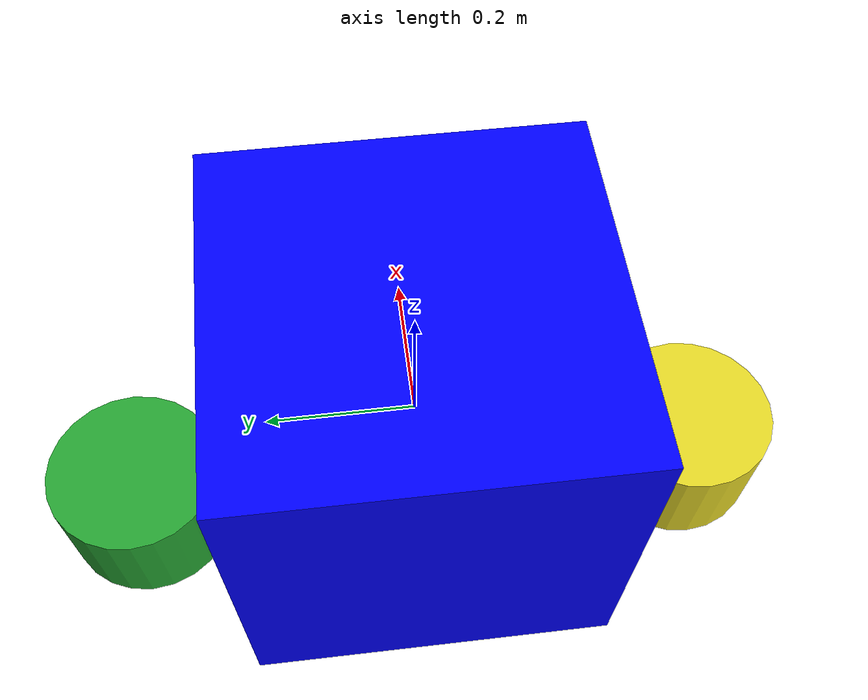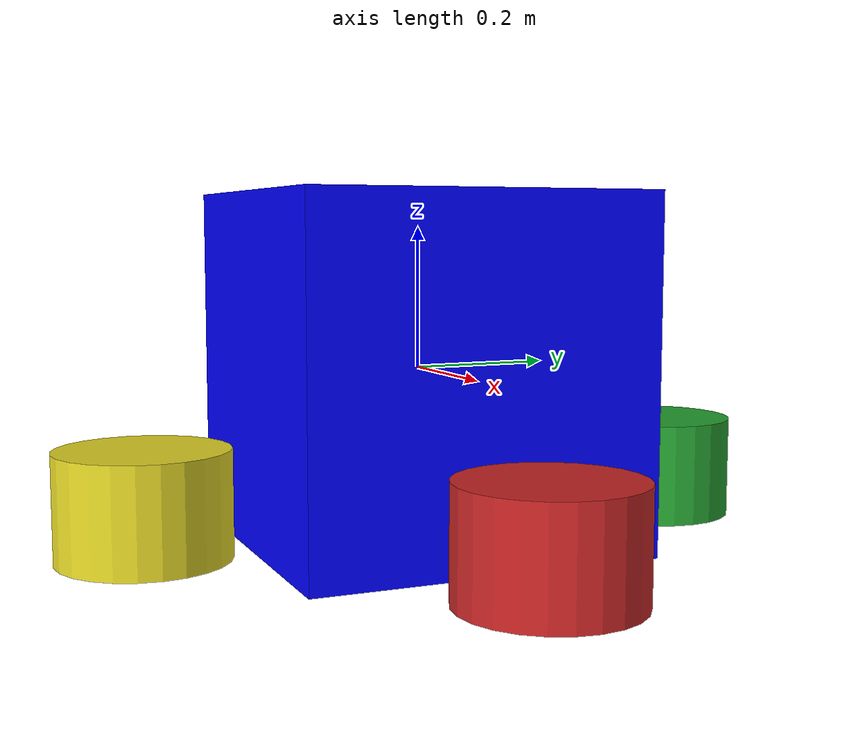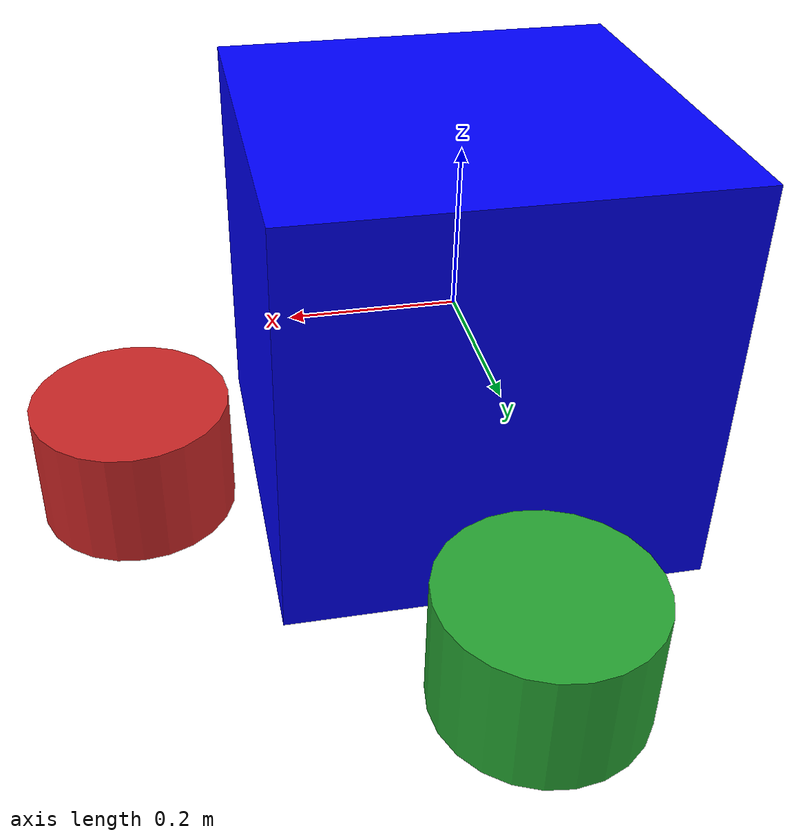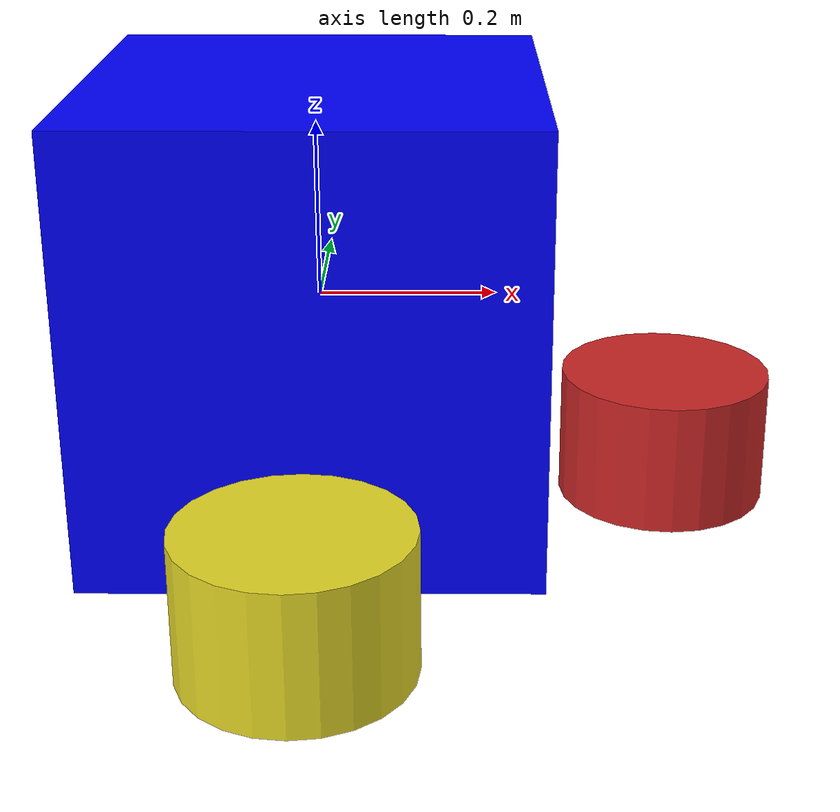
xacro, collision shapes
<?xml version="1.0"?>
<robot name="mrs_system" xmlns:xacro="http://ros.org/wiki/xacro">

  <link name="common_box">
    <inertial>
      <mass value="5.0"/>
      <inertia ixx="0.1" ixy="0.0" ixz="0.0" iyy="0.1" iyz="0.0" izz="0.1"/>
    </inertial>
    <visual>
      <geometry><box size="0.5 0.5 0.5"/></geometry>
      <material name="blue"><color rgba="0 0 1 1"/></material>
    </visual>
    <collision>
      <geometry><box size="0.5 0.5 0.5"/></geometry>
    </collision>
  </link>
  <gazebo reference="common_box"><material>Gazebo/Blue</material></gazebo>

  <xacro:macro name="tethered_burger" params="prefix x y yaw color">
    <link name="tb3_${prefix}_link">
      <inertial><mass value="1.0"/><inertia ixx="0.01" ixy="0" ixz="0" iyy="0.01" iyz="0" izz="0.01"/></inertial>
      <visual>
        <origin xyz="0 0 0" rpy="0 0 0"/>
        <geometry>
          <mesh filename="package://turtlebot3_description/meshes/bases/burger_base.stl" scale="0.001 0.001 0.001"/>
        </geometry>
      </visual>
      <collision>
        <origin xyz="0 0 0.05" rpy="0 0 0"/>
        <geometry><cylinder length="0.15" radius="0.12"/></geometry>
      </collision>
    </link>

    <joint name="spring_joint_${prefix}" type="prismatic">
      <parent link="common_box"/>
      <child link="tb3_${prefix}_link"/>
      <origin xyz="${x} ${y} -0.22" rpy="0 0 ${yaw}"/>
      <axis xyz="1 0 0"/>
      <limit lower="-1.0" upper="1.0" effort="100" velocity="10"/>
      <dynamics damping="5.0" friction="0.0" stiffness="150.0"/>
    </joint>

    <gazebo reference="spring_joint_${prefix}">
      <provideFeedback>true</provideFeedback>
      <implicitSpringDamper>true</implicitSpringDamper>
    </gazebo>

    <gazebo reference="tb3_${prefix}_link"><material>Gazebo/${color}</material></gazebo>

    <gazebo>
      <plugin name="move_${prefix}" filename="libgazebo_ros_planar_move.so">
        <ros><namespace>/tb3_${prefix}</namespace></ros>
        <robot_base_frame>tb3_${prefix}_link</robot_base_frame>
      </plugin>
      <plugin name="ft_${prefix}" filename="libgazebo_ros_ft_sensor.so">
        <ros><namespace>/tb3_${prefix}</namespace><remapping>wrench:=force_sensor</remapping></ros>
        <joint_name>spring_joint_${prefix}</joint_name>
        <update_rate>50.0</update_rate>
      </plugin>
    </gazebo>
  </xacro:macro>

  <xacro:tethered_burger prefix="leader" x="0.4" y="0"     yaw="0"      color="Red"/>
  <xacro:tethered_burger prefix="f1"     x="0"   y="0.4"   yaw="1.5708" color="Green"/>
  <xacro:tethered_burger prefix="f2"     x="0"   y="-0.4"  yaw="-1.5708" color="Yellow"/>

</robot>
